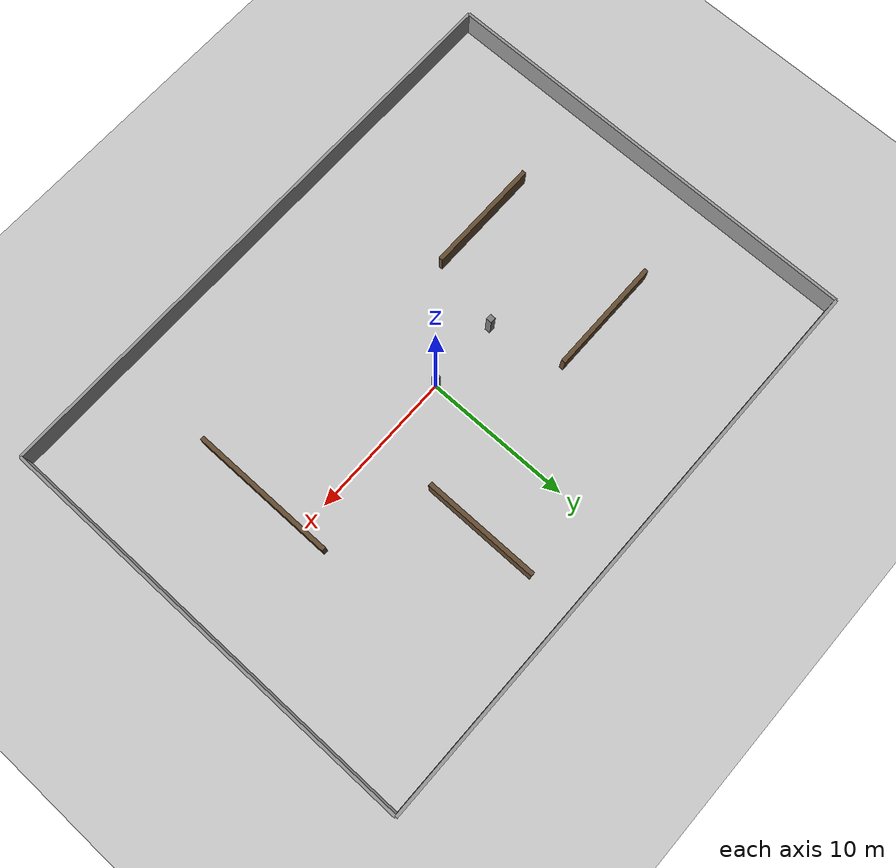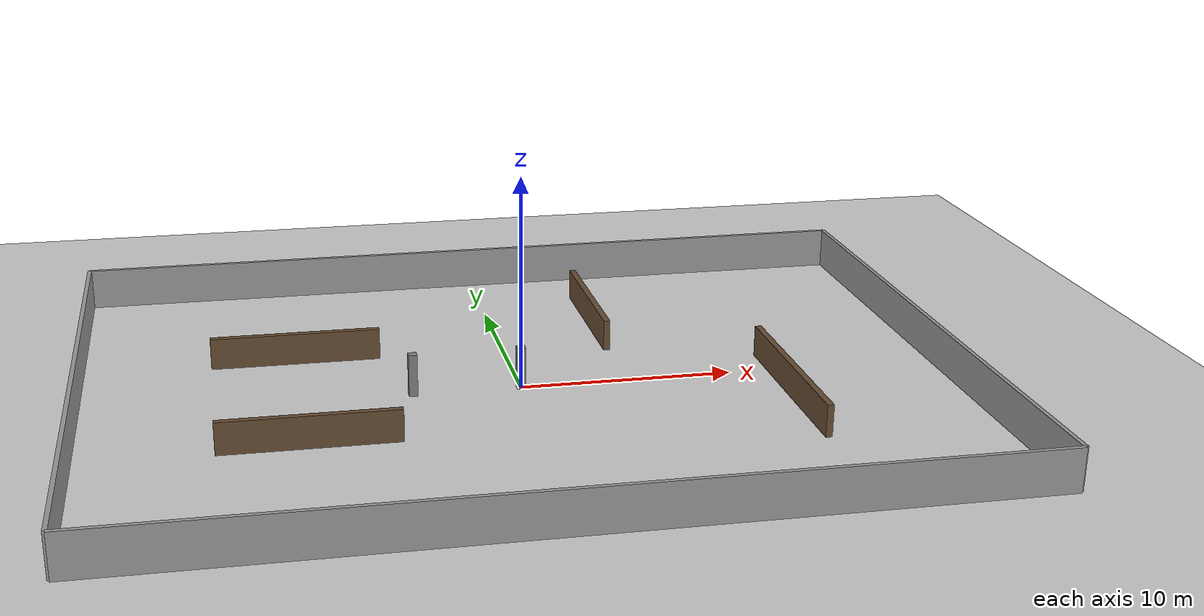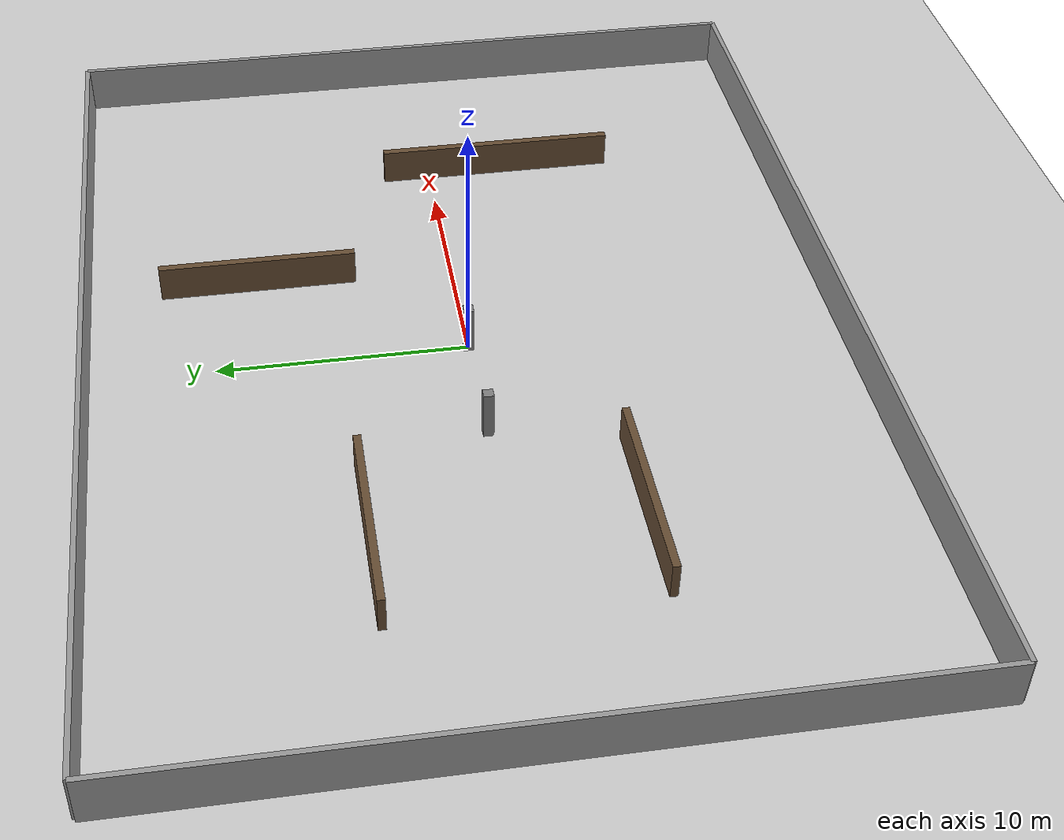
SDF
<?xml version="1.0"?>
<sdf version="1.8">
  <world name="warehouse">

    <!-- Physics -->
    <physics name="default" type="ode">
      <max_step_size>0.004</max_step_size>
      <real_time_factor>1.0</real_time_factor>
    </physics>

    <!-- Plugins -->
    <plugin name="gz::sim::systems::Physics"    filename="gz-sim-physics-system"/>
    <plugin name="gz::sim::systems::UserCommands" filename="gz-sim-user-commands-system"/>
    <plugin name="gz::sim::systems::SceneBroadcaster" filename="gz-sim-scene-broadcaster-system"/>
    <plugin name="gz::sim::systems::Sensors"    filename="gz-sim-sensors-system">
      <render_engine>ogre2</render_engine>
    </plugin>

    <!-- Lighting -->
    <light name="sun" type="directional">
      <cast_shadows>true</cast_shadows>
      <pose>0 0 10 0 0 0</pose>
      <diffuse>0.8 0.8 0.8 1</diffuse>
      <specular>0.2 0.2 0.2 1</specular>
      <direction>-0.5 0.1 -0.9</direction>
    </light>

    <!-- Ground plane -->
    <model name="ground_plane">
      <static>true</static>
      <link name="link">
        <collision name="collision">
          <geometry><plane><normal>0 0 1</normal><size>100 100</size></plane></geometry>
        </collision>
        <visual name="visual">
          <geometry><plane><normal>0 0 1</normal><size>100 100</size></plane></geometry>
          <material><ambient>0.8 0.8 0.8 1</ambient></material>
        </visual>
      </link>
    </model>

    <!-- Outer walls (40 × 30 m warehouse) -->
    <!-- North wall -->
    <model name="wall_north">
      <static>true</static>
      <pose>0 15 1 0 0 0</pose>
      <link name="link">
        <collision name="col"><geometry><box><size>40 0.2 2</size></box></geometry></collision>
        <visual name="vis"><geometry><box><size>40 0.2 2</size></box></geometry>
          <material><ambient>0.6 0.6 0.6 1</ambient></material></visual>
      </link>
    </model>
    <!-- South wall -->
    <model name="wall_south">
      <static>true</static>
      <pose>0 -15 1 0 0 0</pose>
      <link name="link">
        <collision name="col"><geometry><box><size>40 0.2 2</size></box></geometry></collision>
        <visual name="vis"><geometry><box><size>40 0.2 2</size></box></geometry>
          <material><ambient>0.6 0.6 0.6 1</ambient></material></visual>
      </link>
    </model>
    <!-- East wall -->
    <model name="wall_east">
      <static>true</static>
      <pose>20 0 1 0 0 0</pose>
      <link name="link">
        <collision name="col"><geometry><box><size>0.2 30 2</size></box></geometry></collision>
        <visual name="vis"><geometry><box><size>0.2 30 2</size></box></geometry>
          <material><ambient>0.6 0.6 0.6 1</ambient></material></visual>
      </link>
    </model>
    <!-- West wall -->
    <model name="wall_west">
      <static>true</static>
      <pose>-20 0 1 0 0 0</pose>
      <link name="link">
        <collision name="col"><geometry><box><size>0.2 30 2</size></box></geometry></collision>
        <visual name="vis"><geometry><box><size>0.2 30 2</size></box></geometry>
          <material><ambient>0.6 0.6 0.6 1</ambient></material></visual>
      </link>
    </model>

    <!-- Interior shelving racks -->
    <model name="rack_a">
      <static>true</static>
      <pose>-10 5 0.75 0 0 0</pose>
      <link name="link">
        <collision name="col"><geometry><box><size>8 0.3 1.5</size></box></geometry></collision>
        <visual name="vis"><geometry><box><size>8 0.3 1.5</size></box></geometry>
          <material><ambient>0.4 0.3 0.2 1</ambient></material></visual>
      </link>
    </model>
    <model name="rack_b">
      <static>true</static>
      <pose>-10 -5 0.75 0 0 0</pose>
      <link name="link">
        <collision name="col"><geometry><box><size>8 0.3 1.5</size></box></geometry></collision>
        <visual name="vis"><geometry><box><size>8 0.3 1.5</size></box></geometry>
          <material><ambient>0.4 0.3 0.2 1</ambient></material></visual>
      </link>
    </model>
    <model name="rack_c">
      <static>true</static>
      <pose>5 8 0.75 0 0 0</pose>
      <link name="link">
        <collision name="col"><geometry><box><size>0.3 8 1.5</size></box></geometry></collision>
        <visual name="vis"><geometry><box><size>0.3 8 1.5</size></box></geometry>
          <material><ambient>0.4 0.3 0.2 1</ambient></material></visual>
      </link>
    </model>
    <model name="rack_d">
      <static>true</static>
      <pose>12 -3 0.75 0 0 0</pose>
      <link name="link">
        <collision name="col"><geometry><box><size>0.3 10 1.5</size></box></geometry></collision>
        <visual name="vis"><geometry><box><size>0.3 10 1.5</size></box></geometry>
          <material><ambient>0.4 0.3 0.2 1</ambient></material></visual>
      </link>
    </model>

    <!-- Central pillar cluster -->
    <model name="pillar_1">
      <static>true</static>
      <pose>0 0 1 0 0 0</pose>
      <link name="link">
        <collision name="col"><geometry><box><size>0.4 0.4 2</size></box></geometry></collision>
        <visual name="vis"><geometry><box><size>0.4 0.4 2</size></box></geometry>
          <material><ambient>0.5 0.5 0.5 1</ambient></material></visual>
      </link>
    </model>
    <model name="pillar_2">
      <static>true</static>
      <pose>-5 0 1 0 0 0</pose>
      <link name="link">
        <collision name="col"><geometry><box><size>0.4 0.4 2</size></box></geometry></collision>
        <visual name="vis"><geometry><box><size>0.4 0.4 2</size></box></geometry>
          <material><ambient>0.5 0.5 0.5 1</ambient></material></visual>
      </link>
    </model>

  </world>
</sdf>
